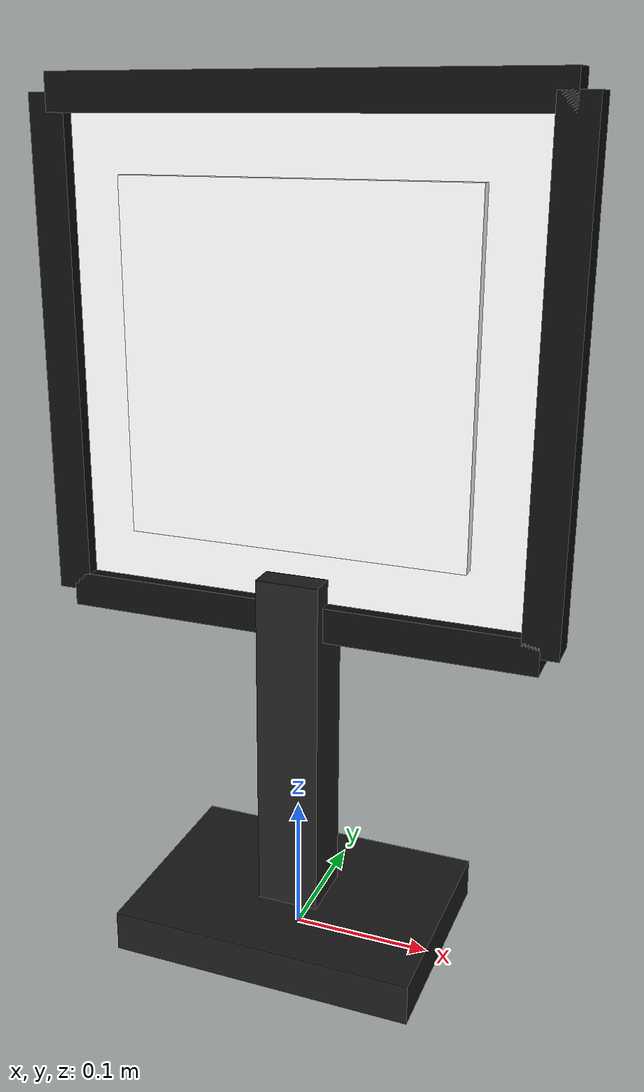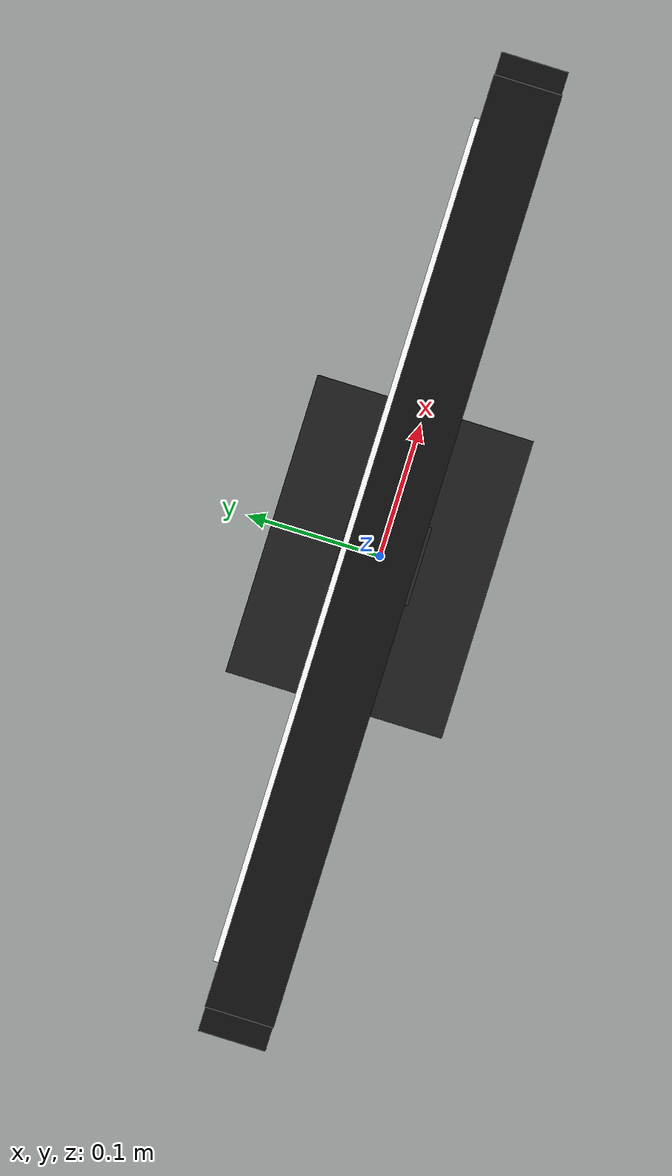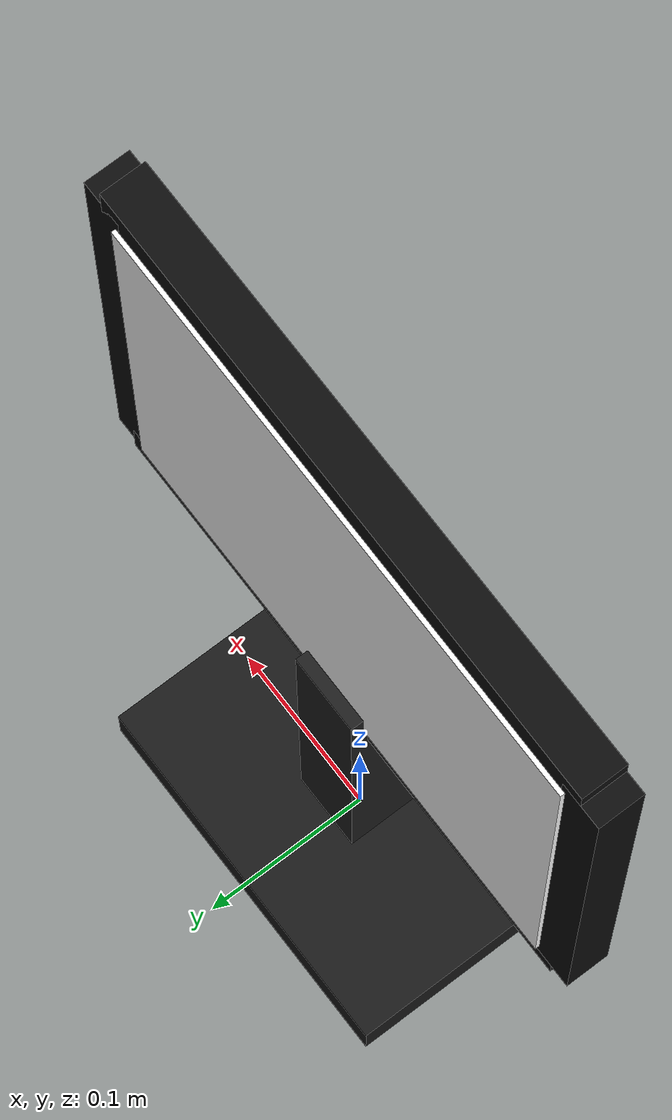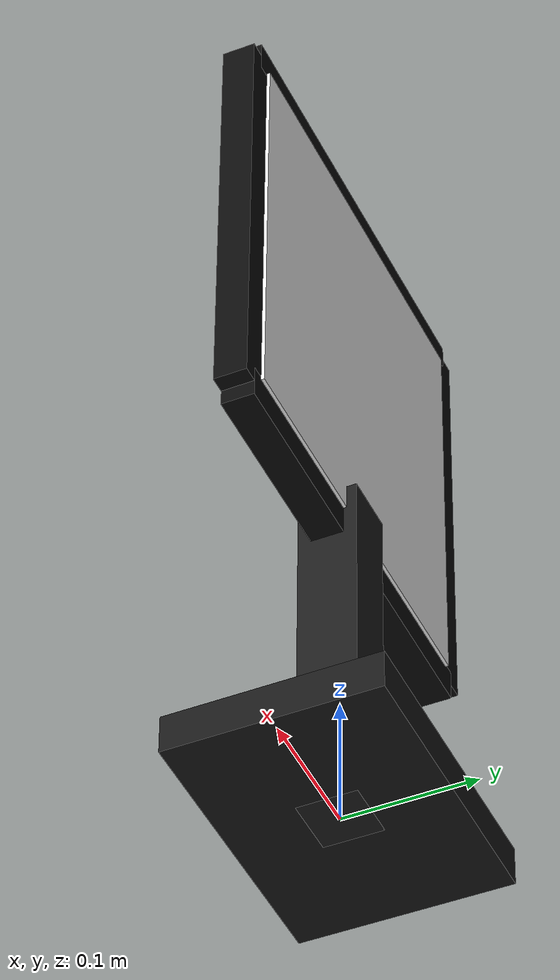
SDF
<?xml version="1.0" ?>
<sdf version="1.10">
  <model name="restaurant_qr_marker_04">
    <static>true</static>
    <link name="qr_whiteboard_link">
      <!-- Model origin is on the floor. QR board center height is 0.42 m. -->
      <visual name="white_backing">
        <pose>0 0.006 0.42 0 0 0</pose>
        <geometry><box><size>0.32 0.018 0.32</size></box></geometry>
        <material><ambient>1 1 1 1</ambient><diffuse>1 1 1 1</diffuse></material>
      </visual>
      <visual name="qr_panel_visual">
        <pose>0 -0.006 0.42 0 0 0</pose>
        <geometry><box><size>0.24 0.012 0.24</size></box></geometry>
        <material>
          <ambient>1 1 1 1</ambient>
          <diffuse>1 1 1 1</diffuse>
          <pbr><metal><albedo_map>materials/textures/qr_04.png</albedo_map><roughness>0.85</roughness><metalness>0.0</metalness></metal></pbr>
        </material>
      </visual>
      <visual name="black_frame_top"><pose>0 0 0.59 0 0 0</pose><geometry><box><size>0.34 0.025 0.025</size></box></geometry><material><ambient>0.05 0.05 0.05 1</ambient><diffuse>0.05 0.05 0.05 1</diffuse></material></visual>
      <visual name="black_frame_bottom"><pose>0 0 0.25 0 0 0</pose><geometry><box><size>0.34 0.025 0.025</size></box></geometry><material><ambient>0.05 0.05 0.05 1</ambient><diffuse>0.05 0.05 0.05 1</diffuse></material></visual>
      <visual name="black_frame_left"><pose>-0.17 0 0.42 0 0 0</pose><geometry><box><size>0.025 0.025 0.34</size></box></geometry><material><ambient>0.05 0.05 0.05 1</ambient><diffuse>0.05 0.05 0.05 1</diffuse></material></visual>
      <visual name="black_frame_right"><pose>0.17 0 0.42 0 0 0</pose><geometry><box><size>0.025 0.025 0.34</size></box></geometry><material><ambient>0.05 0.05 0.05 1</ambient><diffuse>0.05 0.05 0.05 1</diffuse></material></visual>
      <visual name="stand_pole"><pose>0 0 0.14 0 0 0</pose><geometry><box><size>0.045 0.045 0.28</size></box></geometry><material><ambient>0.12 0.12 0.12 1</ambient><diffuse>0.12 0.12 0.12 1</diffuse></material></visual>
      <visual name="stand_base"><pose>0 0 0.015 0 0 0</pose><geometry><box><size>0.22 0.16 0.03</size></box></geometry><material><ambient>0.1 0.1 0.1 1</ambient><diffuse>0.1 0.1 0.1 1</diffuse></material></visual>
      <collision name="qr_board_collision"><pose>0 0 0.42 0 0 0</pose><geometry><box><size>0.34 0.03 0.34</size></box></geometry></collision>
      <collision name="stand_collision"><pose>0 0 0.14 0 0 0</pose><geometry><box><size>0.05 0.05 0.28</size></box></geometry></collision>
      <collision name="base_collision"><pose>0 0 0.015 0 0 0</pose><geometry><box><size>0.22 0.16 0.03</size></box></geometry></collision>
    </link>
  </model>
</sdf>
